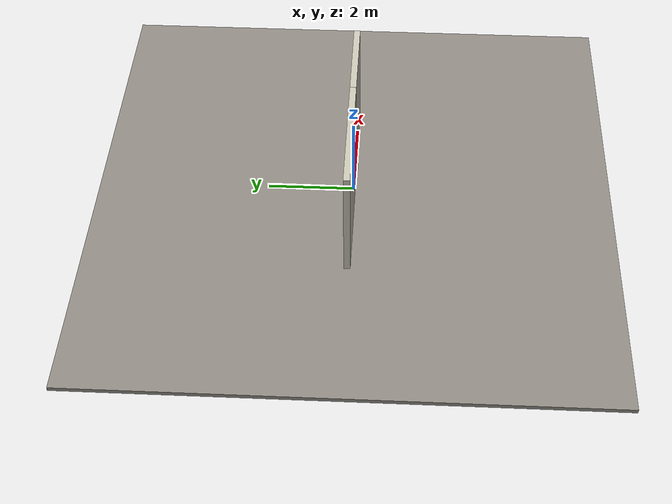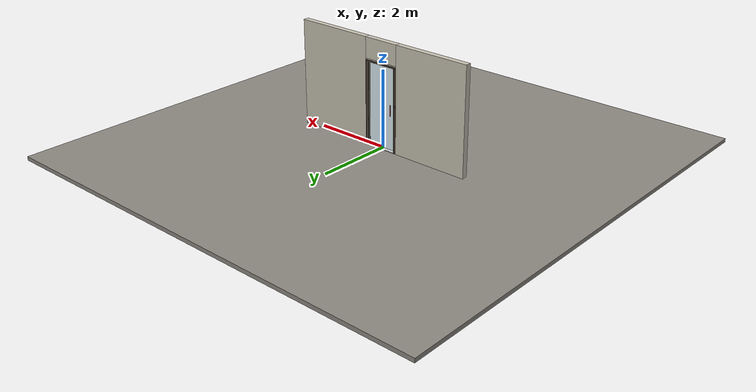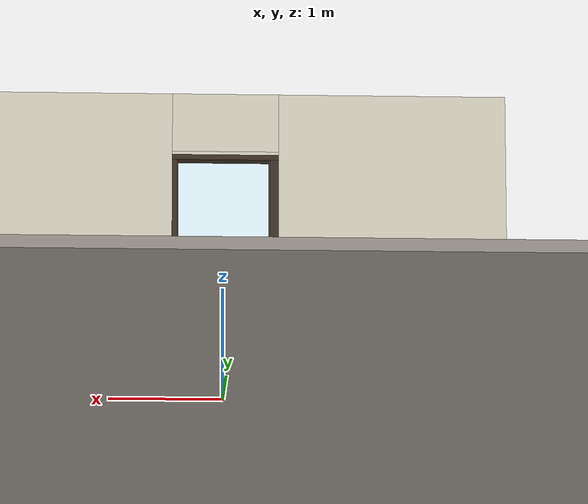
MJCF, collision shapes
<?xml version="1.0" ?>
<mujoco model="db0816_swing_single_minimal">
  <compiler angle="radian" meshdir="../../hardware" texturedir="../../textures" autolimits="true" inertiafromgeom="false"/>
  <option timestep="0.002" integrator="implicitfast" cone="elliptic" impratio="10" noslip_iterations="3">
    <flag multiccd="enable"/>
  </option>
  <size memory="16M"/>
  <default>
    <geom condim="4" solref="0.005 1" solimp="0.95 0.99 0.001"/>
    <joint solreflimit="0.005 1" solimplimit="0.95 0.99 0.001"/>
    <tendon solreflimit="0.005 1"/>
    <equality solref="0.002 1"/>
  </default>
  <visual>
    <headlight ambient="0.4 0.4 0.4" diffuse="0.7 0.7 0.7" specular="0.2 0.2 0.2"/>
    <quality shadowsize="4096"/>
    <map znear="0.01" zfar="60"/>
  </visual>
  <asset>
    <mesh name="pull_f8d79d6331" file="pull_f8d79d6331.obj"/>
    <material name="mat_floor" rgba="0.55 0.53 0.5 1" specular="0.2" shininess="0.15" reflectance="0"/>
    <material name="mat_wall" rgba="0.78 0.76 0.7 1" specular="0.2" shininess="0.1" reflectance="0"/>
    <material name="mat_leaf" rgba="0.85 0.92 0.95 0.25" specular="0.2" shininess="0.95" reflectance="0.1"/>
    <material name="mat_glass_leaf" rgba="0.85 0.92 0.95 0.25" specular="0.2" shininess="0.95" reflectance="0.1"/>
    <material name="mat_patch" rgba="0.75 0.76 0.77 1" specular="0.8" shininess="0.65" reflectance="0.4"/>
    <material name="mat_hinge" rgba="0.65 0.66 0.68 1" specular="0.74" shininess="0.5" reflectance="0.36"/>
    <material name="mat_op_stainless" rgba="0.75 0.76 0.77 1" specular="0.8" shininess="0.65" reflectance="0.4"/>
    <material name="mat_deadbolt" rgba="0.85 0.66 0.3 1" specular="0.8" shininess="0.75" reflectance="0.4"/>
    <material name="mat_frame" rgba="0.22 0.17 0.13 1" specular="0.8" shininess="0.6" reflectance="0.4"/>
    <material name="mat_seal" rgba="0.1 0.1 0.1 1" specular="0.2" shininess="0.1" reflectance="0"/>
    <material name="mat_threshold" rgba="0.8 0.81 0.83 1" specular="0.8" shininess="0.6" reflectance="0.4"/>
    <material name="mat_closer" rgba="0.75 0.76 0.77 1" specular="0.8" shininess="0.65" reflectance="0.4"/>
    <material name="mat_sign" rgba="0.75 0.76 0.77 1" specular="0.8" shininess="0.65" reflectance="0.4"/>
    <texture name="skybox" type="skybox" builtin="gradient" rgb1="0.6 0.7 0.85" rgb2="0.9 0.92 0.95" width="256" height="256"/>
  </asset>
  <worldbody>
    <light name="sun" pos="1.5 -2.5 4" dir="-0.3 0.5 -0.8" directional="true" diffuse="0.8 0.8 0.8" specular="0.3 0.3 0.3" castshadow="true"/>
    <light name="fill" pos="-1.5 2.5 3" dir="0.3 -0.5 -0.7" directional="true" diffuse="0.35 0.35 0.4" castshadow="false"/>
    <camera name="robot_view" pos="0 -2.594812 1.812087" xyaxes="1 0 0 0 0.26963 0.962964" fovy="52"/>
    <camera name="far_view" pos="0 2.680813 1.812087" xyaxes="-1 0 0 0 -0.26963 0.962964" fovy="52"/>
    <camera name="iso" pos="-2.004737 -2.172762 2.234138" xyaxes="0.741536 -0.670913 0 0.242917 0.268487 0.932151" fovy="46"/>
    <camera name="detail_handle" pos="-0.1205 -0.8975 1.347" xyaxes="0.97561 0.219512 0 -0.070934 0.315262 0.94635" fovy="38"/>
    <geom name="floor" type="box" size="6 6 0.05" pos="0 0 -0.05" material="mat_floor" group="0" contype="1" conaffinity="1" friction="0.8 0.005 0.0001" density="2400"/>
    <geom name="wall_left" type="box" size="1.00725 0.0725 1.3735" pos="-1.49275 0.043 1.3735" material="mat_wall" group="0" contype="1" conaffinity="1" friction="0.6 0.005 0.0001" density="800"/>
    <geom name="wall_right" type="box" size="1.02225 0.0725 1.3735" pos="1.47775 0.043 1.3735" material="mat_wall" group="0" contype="1" conaffinity="1" friction="0.6 0.005 0.0001" density="800"/>
    <geom name="wall_header" type="box" size="0.4705 0.0725 0.2625" pos="-0.015 0.043 2.4845" material="mat_wall" group="0" contype="1" conaffinity="1" friction="0.6 0.005 0.0001" density="800"/>
    <geom name="jamb_hinge" type="box" size="0.0225 0.0725 1.0735" pos="0.433 0.043 1.0735" material="mat_frame" group="0" contype="1" conaffinity="1" friction="0.6 0.005 0.0001" density="300"/>
    <geom name="strike_1207_wall_n" type="box" size="0.0375 0.053 0.0155" pos="-0.448 0.0625 1.207" material="mat_frame" group="0" contype="1" conaffinity="1" friction="0.6 0.005 0.0001" density="300"/>
    <geom name="strike_1207_wall_p" type="box" size="0.0375 0.01 0.0155" pos="-0.448 -0.0195 1.207" material="mat_frame" group="0" contype="1" conaffinity="1" friction="0.6 0.005 0.0001" density="300"/>
    <geom name="strike_1207_back" type="box" size="0.0228 0.0095 0.0155" pos="-0.4627 0 1.207" material="mat_frame" group="0" contype="1" conaffinity="1" friction="0.6 0.005 0.0001" density="300"/>
    <geom name="jamb_strike_0" type="box" size="0.0375 0.0725 0.59575" pos="-0.448 0.043 0.59575" material="mat_frame" group="0" contype="1" conaffinity="1" friction="0.6 0.005 0.0001" density="300"/>
    <geom name="jamb_strike_1" type="box" size="0.0375 0.0725 0.46225" pos="-0.448 0.043 1.68475" material="mat_frame" group="0" contype="1" conaffinity="1" friction="0.6 0.005 0.0001" density="300"/>
    <geom name="jamb_head" type="box" size="0.4705 0.0725 0.0225" pos="-0.015 0.043 2.1695" material="mat_frame" group="0" contype="1" conaffinity="1" friction="0.6 0.005 0.0001" density="300"/>
    <geom name="head_stud" type="box" size="0.4705 0.0725 0.015" pos="-0.015 0.043 2.207" material="mat_wall" group="0" contype="1" conaffinity="1" friction="0.6 0.005 0.0001" density="500"/>
    <geom name="stop_hinge" type="box" size="0.0055 0.016 1.0735" pos="0.405 0.039 1.0735" material="mat_frame" group="0" contype="1" conaffinity="1" friction="0.6 0.005 0.0001" density="300"/>
    <geom name="stop_strike" type="box" size="0.0055 0.016 1.0735" pos="-0.405 0.039 1.0735" material="mat_frame" group="0" contype="1" conaffinity="1" friction="0.6 0.005 0.0001" density="300"/>
    <geom name="stop_head" type="box" size="0.4105 0.016 0.0055" pos="0 0.039 2.1415" material="mat_frame" group="0" contype="1" conaffinity="1" friction="0.6 0.005 0.0001" density="300"/>
    <geom name="threshold" type="box" size="0.4555 0.0725 0.0065" pos="0 0.043 0.0065" material="mat_threshold" group="0" contype="1" conaffinity="1" friction="0.5 0.005 0.0001" density="2700"/>
    <site name="approach_point" pos="0 -1.5 0" quat="1 0 0 0" size="0.05" rgba="0.2 0.9 0.2 0.5" group="4"/>
    <site name="goal_point" pos="0 1.5 0" quat="1 0 0 0" size="0.05" rgba="0.2 0.9 0.2 0.5" group="4"/>
    <site name="door_plane_center" pos="0 0 1.0735" quat="1 0 0 0" size="0.02" rgba="0.2 0.9 0.2 0.5" group="4"/>
    <body name="leaf" pos="0.4105 0 0">
      <inertial pos="-0.419632 0 1.079563" mass="88.081347" quat="-0.499897 -0.499897 -0.500103 0.500103" diaginertia="4.98732677 32.124187732 37.034282029"/>
      <joint name="leaf_hinge" type="hinge" axis="0 0 1" pos="-0.003 -0.0295 0" limited="true" range="0 1.832596" solreflimit="0.02 1" damping="8.168374" frictionloss="1.966204" stiffness="17.118706" springref="-2.550426" armature="0.02"/>
      <geom name="leaf_glass" type="box" size="0.4065 0.0225 1.063" pos="-0.4095 0 1.08" material="mat_glass_leaf" group="0" contype="1" conaffinity="1" friction="0.4 0.005 0.0001" density="1"/>
      <geom name="leaf_pull_n" type="mesh" mesh="pull_f8d79d6331" pos="-0.711 -0.0225 1.067" quat="0 0 -0.707107 0.707107" material="mat_op_stainless" group="1" contype="0" conaffinity="0" density="3000"/>
      <geom name="leaf_pull_col_n" type="capsule" size="0.0125 0.13" pos="-0.711 -0.0975 1.067" material="mat_op_stainless" group="3" contype="1" conaffinity="1" rgba="0.8 0.3 0.3 0.25" friction="0.7 0.01 0.0001" density="3000"/>
      <geom name="leaf_pull_p" type="mesh" mesh="pull_f8d79d6331" pos="-0.711 0.0225 1.067" quat="0 0 0.707107 0.707107" material="mat_op_stainless" group="1" contype="0" conaffinity="0" density="3000"/>
      <geom name="leaf_pull_col_p" type="capsule" size="0.0125 0.13" pos="-0.711 0.0975 1.067" material="mat_op_stainless" group="3" contype="1" conaffinity="1" rgba="0.8 0.3 0.3 0.25" friction="0.7 0.01 0.0001" density="3000"/>
      <site name="leaf_pull_grip_n" pos="-0.711 -0.0975 1.067" quat="1 0 0 0" size="0.012" rgba="0.2 0.9 0.2 0.5" group="4"/>
      <site name="leaf_pull_grip_p" pos="-0.711 0.0975 1.067" quat="1 0 0 0" size="0.012" rgba="0.2 0.9 0.2 0.5" group="4"/>
      <site name="leaf_edge_mid" pos="-0.816 0 1.063" quat="1 0 0 0" size="0.02" rgba="0.2 0.9 0.2 0.5" group="4"/>
    </body>
  </worldbody>
  <sensor>
    <jointpos name="leaf_hinge_pos" joint="leaf_hinge"/>
    <jointvel name="leaf_hinge_vel" joint="leaf_hinge"/>
  </sensor>
</mujoco>
